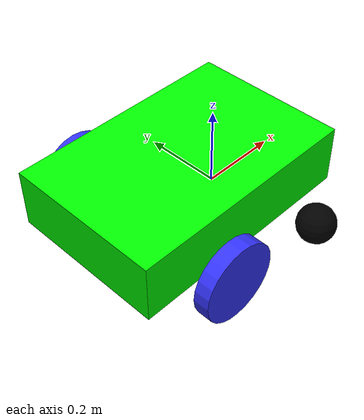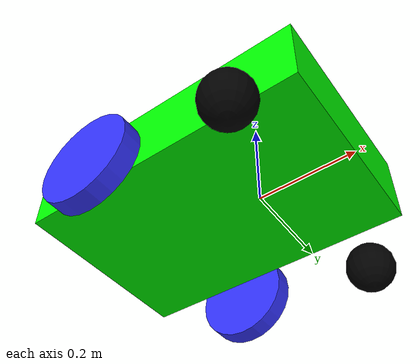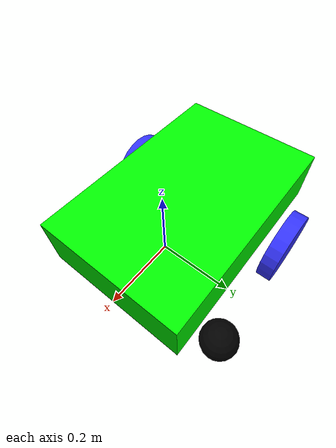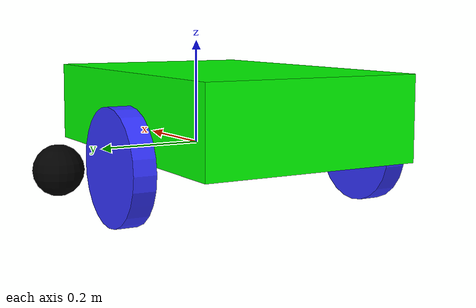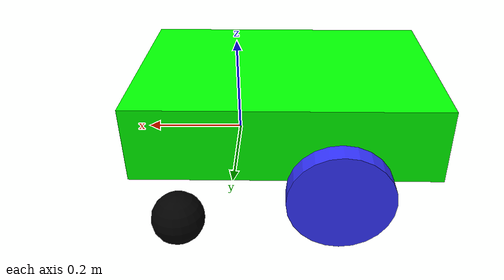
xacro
<?xml version="1.0"?>
<robot xmlns:xacro="http://www.ros.org/wiki/xacro"  >

    <xacro:include filename="inertial_macros.xacro"/>

    <material name="white">
        <color rgba="1 1 1 1"/>
    </material>

    <material name="orange">
        <color rgba="1 0.3 0.1 1"/>
    </material>

    <material name="red">
        <color rgba="1 0 0 1"/>
    </material>

    <material name="blue">
        <color rgba="0.2 0.2 1 1"/>
    </material>

    <material name="black">
        <color rgba="0 0 0 1"/>
    </material>

    <!-- BASE LINK -->
    <link name="base_link">

    </link>

    <!-- BASE FOOTPRINT LINK -->
    <joint name="base_footprint_joint" type="fixed">
        <parent link="base_link"/>
        <child link="base_footprint"/>
        <origin xyz="0 0 0" rpy="0 0 0"/>
    </joint>

    <link name="base_footprint">
    </link>

    <!-- CHASSIS link -->
    <joint name="chassis_joint" type="fixed">
        <parent link="base_link"/>
        <child link="chassis"/>
        <origin xyz="-0.1 0 0" />
    </joint>

    <link name="chassis">
        <visual>
            <origin xyz="0 0 0.075"/>
            <geometry>
                <box size="0.6 0.4 0.15"/>
            </geometry>
            <material name="green">
                <color rgba="0 1 0 1"/>
            </material>
        </visual>
        <collision>
            <origin xyz="0 0 0.075"/>
            <geometry>
                <box size="0.6 0.4 0.15"/>
            </geometry>
            <material name="green"/>
        </collision>
        <xacro:inertial_box mass="5.0" x="0.6" y="0.4" z="0.15">
            <origin xyz="0 0 0.075" rpy="0 0 0"/>
        </xacro:inertial_box>
    </link>

    <gazebo reference="chassis">
        <material>Gazebo/Green</material>
    </gazebo>

    <!-- WHEEL MACRO -->
    <xacro:macro name="wheel_link" params="prefix offset_x offset_y">
        <joint name="${prefix}_wheel_joint" type="continuous">
            <parent link="base_link"/>
            <child link="${prefix}_wheel"/>
            <origin xyz="${offset_x} ${offset_y} 0" rpy="-${pi/2} 0 0"/>
            <axis xyz="0 0 1"/>
        </joint>

        <link name="${prefix}_wheel">
            <visual>
                <geometry>
                    <cylinder length="0.04" radius="0.1"/>
                </geometry>
                <material name="blue"/>
            </visual>
            <collision>
                <geometry>
                    <cylinder length="0.04" radius="0.1"/>
                </geometry>
                 <material name="blue"/>
            </collision>
            <xacro:inertial_sphere mass="0.5" radius="0.1">
                <origin xyz="0 0 0" rpy="0 0 0"/>
            </xacro:inertial_sphere>
        </link>

        <gazebo reference="${prefix}_wheel">
            <material>Gazebo/Blue</material>
            <mu1 value="2.0"/>
            <mu2 value="2.0"/>
        </gazebo>
    </xacro:macro>

    <!-- Create 4 Wheels -->
    <xacro:wheel_link prefix="rear_left" offset_x="-0.2" offset_y="0.25"/>
    <xacro:wheel_link prefix="rear_right" offset_x="-0.2" offset_y="-0.25"/>

    <!-- FRONT CASTER WHEELS (Passive, Low Friction) -->
    <joint name="front_left_caster_joint" type="fixed">
        <parent link="chassis"/>
        <child link="front_left_caster"/>
        <origin xyz="0.2 0.25 -0.05" rpy="0 0 0"/>
    </joint>

    <link name="front_left_caster">
        <visual>
            <geometry>
                <sphere radius="0.05"/>
            </geometry>
            <material name="black"/>
        </visual>
        <collision>
            <geometry>
                <sphere radius="0.05"/>
            </geometry>
            <material name="black"/>
        </collision>
        <xacro:inertial_sphere mass="0.1" radius="0.05">
            <origin xyz="0 0 0" rpy="0 0 0"/>
        </xacro:inertial_sphere>
    </link>
    <gazebo reference="front_left_caster">
        <material>Gazebo/Black</material>
        <mu1 value="0.001"/>
        <mu2 value="0.001"/>
    </gazebo>

    <joint name="front_right_caster_joint" type="fixed">
        <parent link="chassis"/>
        <child link="front_right_caster"/>
        <origin xyz="0.2 -0.25 -0.05" rpy="0 0 0"/>
    </joint>

    <link name="front_right_caster">
        <visual>
            <geometry>
                <sphere radius="0.05"/>
            </geometry>
            <material name="black"/>
        </visual>
        <collision>
            <geometry>
                <sphere radius="0.05"/>
            </geometry>
            <material name="black"/>
        </collision>
        <xacro:inertial_sphere mass="0.1" radius="0.05">
            <origin xyz="0 0 0" rpy="0 0 0"/>
        </xacro:inertial_sphere>
    </link>
    <gazebo reference="front_right_caster">
        <material>Gazebo/Black</material>
        <mu1 value="0.001"/>
        <mu2 value="0.001"/>
    </gazebo>

    <!-- Remove Caster Wheel -->

</robot>
